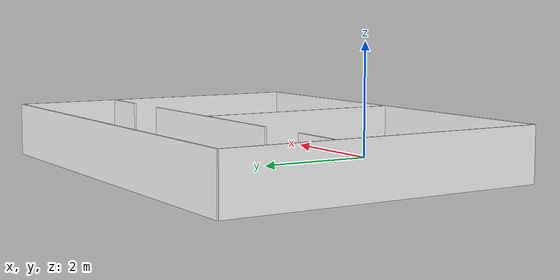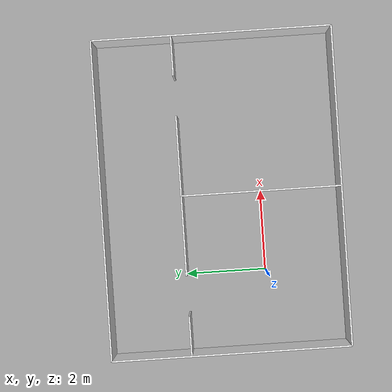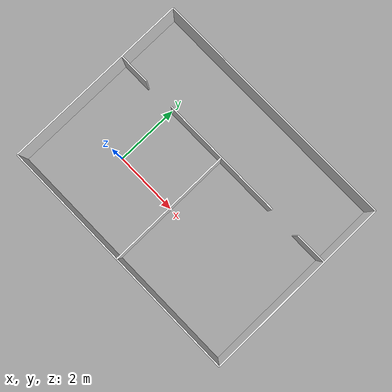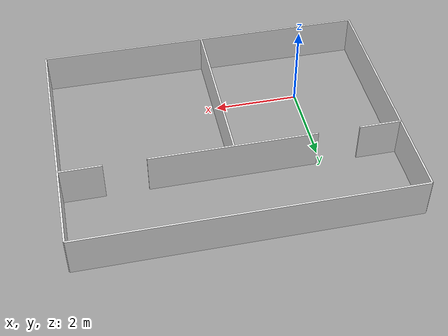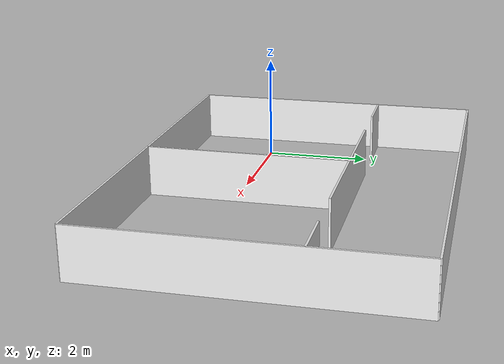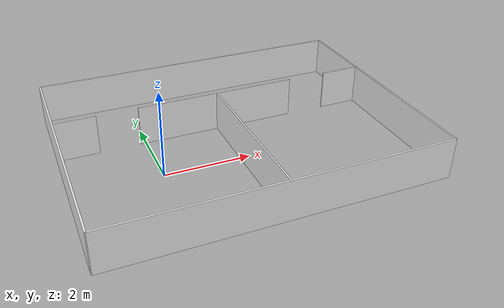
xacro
<?xml version="1.0"?>

<robot name="double-room">

  	<link name="origin">
        <inertial>
            <origin xyz="0 0 0" />
            <mass value="0" />
            <inertia  ixx="0" ixy="0"  ixz="0"  iyy="0"  iyz="0"  izz="0" />
        </inertial>
        <visual>
            <origin xyz="0 0 0" />
            <geometry>
                <box size="0.01 0.01 0.01" />
            </geometry>
        </visual>
        <collision>
            <origin xyz="0 0 0"/>
            <geometry>
                <box size="0.01 0.01 0.01"/>
            </geometry>
        </collision>
  	</link>

	<joint name="join1" type="fixed">
        <origin xyz="2.0 0 0.15" rpy="0 0 0"/>
        <parent link="origin"/>
        <child link="wall_1"/>
  	</joint>

  	<link name="wall_1">
        <inertial>
            <origin xyz="0 0 0" />
            <mass value="10.0" />
            <inertia  ixx="1.0" ixy="0"  ixz="0"  iyy="1.0"  iyz="0"  izz="1.0" />
        </inertial>
        <visual>
            <origin xyz="0 0 0"/>
            <geometry>
                <box size="0.04 4.0 1.0" />
            </geometry>
        </visual>
        <collision>
            <origin xyz="0 0 0"/>
            <geometry>
                <box size="0.04 4.0 1.0"/>
            </geometry>
        </collision>
  	</link>

  	<joint name="join2" type="fixed">
        <origin xyz="0.0 2.0 0" rpy="0 0 1.570796"/>
        <parent link="wall_1"/>
        <child link="wall_2"/>
  	</joint>

  	<link name="wall_2">
        <inertial>
            <origin xyz="0 0 0" />
            <mass value="10.0" />
            <inertia  ixx="1.0" ixy="0.0"  ixz="0.0"  iyy="1.0"  iyz="0.0"  izz="1.0" />
        </inertial>
        <visual>
            <origin xyz="0 0 0"/>
            <geometry>
                <box size="0.04 4.0 1.0" />
            </geometry>
        </visual>
        <collision>
            <origin xyz="0 0 0"/>
            <geometry>
                <box size="0.04 4.0 1.0"/>
            </geometry>
        </collision>
  	</link>

  	<joint name="join3" type="fixed">
        <origin xyz="-3.5 2.0 0" rpy="0 0 1.570796"/>
        <parent link="wall_1"/>
        <child link="wall_3"/>
  	</joint>

  	<link name="wall_3">
        <inertial>
            <origin xyz="0 0 0" />
            <mass value="10.0" />
            <inertia  ixx="1.0" ixy="0.0"  ixz="0.0"  iyy="1.0"  iyz="0.0"  izz="1.0" />
        </inertial>
        <visual>
            <origin xyz="0 0 0"/>
            <geometry>
                <box size="0.04 1.0 1.0" />
            </geometry>
        </visual>
        <collision>
            <origin xyz="0 0 0"/>
            <geometry>
                <box size="0.04 1.0 1.0"/>
            </geometry>
        </collision>
  	</link>

  	<joint name="join4" type="fixed">
        <origin xyz="3.5 2.0 0" rpy="0 0 1.570796"/>
        <parent link="wall_1"/>
        <child link="wall_4"/>
  	</joint>

  	<link name="wall_4">
        <inertial>
            <origin xyz="0 0 0" />
            <mass value="10.0" />
            <inertia  ixx="1.0" ixy="0.0"  ixz="0.0"  iyy="1.0"  iyz="0.0"  izz="1.0" />
        </inertial>
        <visual>
            <origin xyz="0 0 0"/>
            <geometry>
                <box size="0.04 1.0 1.0" />
            </geometry>
        </visual>
        <collision>
            <origin xyz="0 0 0"/>
            <geometry>
                <box size="0.04 1.0 1.0"/>
            </geometry>
        </collision>
  	</link>

  	<joint name="join5" type="fixed">
        <origin xyz="0.0 -2.0 0" rpy="0 0 1.570796"/>
        <parent link="wall_1"/>
        <child link="wall_5"/>
  	</joint>

  	<link name="wall_5">
        <inertial>
            <origin xyz="0 0 0" />
            <mass value="10.0" />
            <inertia  ixx="1.0" ixy="0.0"  ixz="0.0"  iyy="1.0"  iyz="0.0"  izz="1.0" />
        </inertial>
        <visual>
            <origin xyz="0 0 0"/>
            <geometry>
                <box size="0.04 8.0 1.0" />
            </geometry>
        </visual>
        <collision>
            <origin xyz="0 0 0"/>
            <geometry>
                <box size="0.04 8.0 1.0"/>
            </geometry>
        </collision>
  	</link>

  	<joint name="join6" type="fixed">
        <origin xyz="-4.0 1.0 0" rpy="0 0 0"/>
        <parent link="wall_1"/>
        <child link="wall_6"/>
  	</joint>

  	<link name="wall_6">
        <inertial>
            <origin xyz="0 0 0" />
            <mass value="10.0" />
            <inertia  ixx="1.0" ixy="0.0"  ixz="0.0"  iyy="1.0"  iyz="0.0"  izz="1.0" />
        </inertial>
        <visual>
            <origin xyz="0 0 0"/>
            <geometry>
                <box size="0.04 6.0 1.0" />
            </geometry>
        </visual>
        <collision>
            <origin xyz="0 0 0"/>
            <geometry>
                <box size="0.04 6.0 1.0"/>
            </geometry>
        </collision>
  	</link>

  	<joint name="join7" type="fixed">
        <origin xyz="0.0 4.0 0" rpy="0 0 1.570796"/>
        <parent link="wall_1"/>
        <child link="wall_7"/>
  	</joint>

  	<link name="wall_7">
        <inertial>
            <origin xyz="0 0 0" />
            <mass value="10.0" />
            <inertia  ixx="1.0" ixy="0.0"  ixz="0.0"  iyy="1.0"  iyz="0.0"  izz="1.0" />
        </inertial>
        <visual>
            <origin xyz="0 0 0"/>
            <geometry>
                <box size="0.04 8.0 1.0" />
            </geometry>
        </visual>
        <collision>
            <origin xyz="0 0 0"/>
            <geometry>
                <box size="0.04 8.0 1.0"/>
            </geometry>
        </collision>
  	</link>

  	<joint name="join8" type="fixed">
        <origin xyz="4.0 1.0 0" rpy="0 0 0"/>
        <parent link="wall_1"/>
        <child link="wall_8"/>
  	</joint>

  	<link name="wall_8">
        <inertial>
            <origin xyz="0 0 0" />
            <mass value="10.0" />
            <inertia  ixx="1.0" ixy="0.0"  ixz="0.0"  iyy="1.0"  iyz="0.0"  izz="1.0" />
        </inertial>
        <visual>
            <origin xyz="0 0 0"/>
            <geometry>
                <box size="0.04 6.0 1.0" />
            </geometry>
        </visual>
        <collision>
            <origin xyz="0 0 0"/>
            <geometry>
                <box size="0.04 6.0 1.0"/>
            </geometry>
        </collision>
  	</link>

  <gazebo reference="wall_1">
	<material>Gazebo/White</material>
	<selfCollide>false</selfCollide>
  </gazebo>
  <gazebo reference="wall_2">
	<material>Gazebo/White</material>
	<selfCollide>false</selfCollide>
  </gazebo>
  <gazebo reference="wall_3">
	<material>Gazebo/White</material>
	<selfCollide>false</selfCollide>
  </gazebo>
  <gazebo reference="wall_4">
	<material>Gazebo/White</material>
	<selfCollide>false</selfCollide>
  </gazebo>
  <gazebo reference="wall_5">
	<material>Gazebo/White</material>
	<selfCollide>false</selfCollide>
  </gazebo>
  <gazebo reference="wall_6">
	<material>Gazebo/White</material>
	<selfCollide>false</selfCollide>
  </gazebo>
  <gazebo reference="wall_7">
	<material>Gazebo/White</material>
	<selfCollide>false</selfCollide>
  </gazebo>
  <gazebo reference="wall_8">
	<material>Gazebo/White</material>
	<selfCollide>false</selfCollide>
  </gazebo>

</robot>
